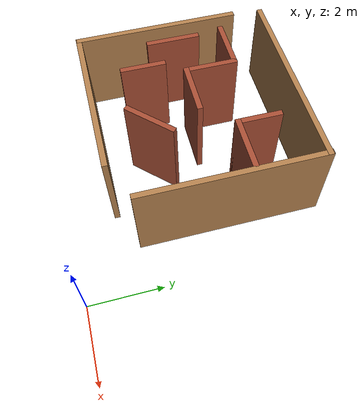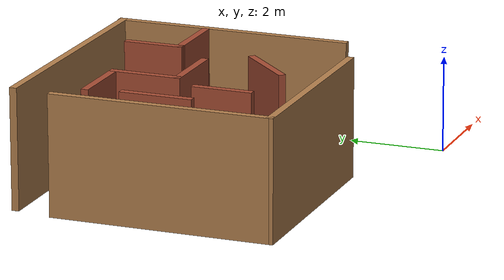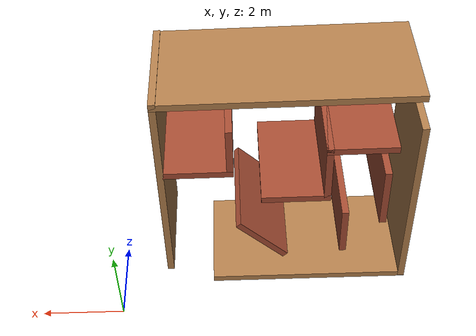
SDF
<?xml version='1.0'?>
<sdf version='1.7'>
  <model name='small_maze'>
    <pose>-3.41402 3.31294 0 0 -0 0</pose>
    <link name='Wall_12'>
      <collision name='Wall_12_Collision'>
        <geometry>
          <box>
            <size>4.61011 0.15 2.5</size>
          </box>
        </geometry>
        <pose>0 0 1.25 0 -0 0</pose>
      </collision>
      <visual name='Wall_12_Visual'>
        <pose>0 0 1.25 0 -0 0</pose>
        <geometry>
          <box>
            <size>4.61011 0.15 2.5</size>
          </box>
        </geometry>
        <material>
          <script>
            <uri>file://media/materials/scripts/gazebo.material</uri>
            <name>Gazebo/Wood</name>
          </script>
          <ambient>1 1 1 1</ambient>
        </material>
        <meta>
          <layer>0</layer>
        </meta>
      </visual>
      <pose>-3.32999 0.1334 0 0 -0 -1.56688</pose>
    </link>
    <link name='Wall_13'>
      <collision name='Wall_13_Collision'>
        <geometry>
          <box>
            <size>4.5 0.15 2.5</size>
          </box>
        </geometry>
        <pose>0 0 1.25 0 -0 0</pose>
      </collision>
      <visual name='Wall_13_Visual'>
        <pose>0 0 1.25 0 -0 0</pose>
        <geometry>
          <box>
            <size>4.5 0.15 2.5</size>
          </box>
        </geometry>
        <material>
          <script>
            <uri>file://media/materials/scripts/gazebo.material</uri>
            <name>Gazebo/Wood</name>
          </script>
          <ambient>1 1 1 1</ambient>
        </material>
        <meta>
          <layer>0</layer>
        </meta>
      </visual>
      <pose>-1.14624 -2.11413 0 0 -0 0</pose>
    </link>
    <link name='Wall_15'>
      <collision name='Wall_15_Collision'>
        <geometry>
          <box>
            <size>5 0.15 2.5</size>
          </box>
        </geometry>
        <pose>0 0 1.25 0 -0 0</pose>
      </collision>
      <visual name='Wall_15_Visual'>
        <pose>0 0 1.25 0 -0 0</pose>
        <geometry>
          <box>
            <size>5 0.15 2.5</size>
          </box>
        </geometry>
        <material>
          <script>
            <uri>file://media/materials/scripts/gazebo.material</uri>
            <name>Gazebo/Wood</name>
          </script>
          <ambient>1 1 1 1</ambient>
        </material>
        <meta>
          <layer>0</layer>
        </meta>
      </visual>
      <pose>2.09051 0.812943 0 0 -0 -1.5708</pose>
    </link>
    <link name='Wall_17'>
      <collision name='Wall_17_Collision'>
        <geometry>
          <box>
            <size>1.5 0.15 2.5</size>
          </box>
        </geometry>
        <pose>0 0 1.25 0 -0 0</pose>
      </collision>
      <visual name='Wall_17_Visual'>
        <pose>0 0 1.25 0 -0 0</pose>
        <geometry>
          <box>
            <size>1.5 0.15 2.5</size>
          </box>
        </geometry>
        <material>
          <script>
            <uri>file://media/materials/scripts/gazebo.material</uri>
            <name>Gazebo/Bricks</name>
          </script>
          <ambient>1 1 1 1</ambient>
        </material>
        <meta>
          <layer>0</layer>
        </meta>
      </visual>
      <pose>-2.13903 1.89121 0 0 -0 0</pose>
    </link>
    <link name='Wall_18'>
      <collision name='Wall_18_Collision'>
        <geometry>
          <box>
            <size>1.5 0.15 2.5</size>
          </box>
        </geometry>
        <pose>0 0 1.25 0 -0 0</pose>
      </collision>
      <visual name='Wall_18_Visual'>
        <pose>0 0 1.25 0 -0 0</pose>
        <geometry>
          <box>
            <size>1.5 0.15 2.5</size>
          </box>
        </geometry>
        <material>
          <script>
            <uri>file://media/materials/scripts/gazebo.material</uri>
            <name>Gazebo/Bricks</name>
          </script>
          <ambient>1 1 1 1</ambient>
        </material>
        <meta>
          <layer>0</layer>
        </meta>
      </visual>
      <pose>-1.46403 1.21621 0 0 -0 -1.5708</pose>
    </link>
    <link name='Wall_20'>
      <collision name='Wall_20_Collision'>
        <geometry>
          <box>
            <size>1.5 0.15 2.5</size>
          </box>
        </geometry>
        <pose>0 0 1.25 0 -0 0</pose>
      </collision>
      <visual name='Wall_20_Visual'>
        <pose>0 0 1.25 0 -0 0</pose>
        <geometry>
          <box>
            <size>1.5 0.15 2.5</size>
          </box>
        </geometry>
        <material>
          <script>
            <uri>file://media/materials/scripts/gazebo.material</uri>
            <name>Gazebo/Bricks</name>
          </script>
          <ambient>1 1 1 1</ambient>
        </material>
        <meta>
          <layer>0</layer>
        </meta>
      </visual>
      <pose>-0.789028 0.541208 0 0 -0 0</pose>
    </link>
    <link name='Wall_22'>
      <collision name='Wall_22_Collision'>
        <geometry>
          <box>
            <size>1.5 0.15 2.5</size>
          </box>
        </geometry>
        <pose>0 0 1.25 0 -0 0</pose>
      </collision>
      <visual name='Wall_22_Visual'>
        <pose>0 0 1.25 0 -0 0</pose>
        <geometry>
          <box>
            <size>1.5 0.15 2.5</size>
          </box>
        </geometry>
        <material>
          <script>
            <uri>file://media/materials/scripts/gazebo.material</uri>
            <name>Gazebo/Bricks</name>
          </script>
          <ambient>1 1 1 1</ambient>
        </material>
        <meta>
          <layer>0</layer>
        </meta>
      </visual>
      <pose>-2.72081 0.461931 0 0 -0 -1.5708</pose>
    </link>
    <link name='Wall_24'>
      <collision name='Wall_24_Collision'>
        <geometry>
          <box>
            <size>1.25 0.15 2.5</size>
          </box>
        </geometry>
        <pose>0 0 1.25 0 -0 0</pose>
      </collision>
      <visual name='Wall_24_Visual'>
        <pose>0 0 1.25 0 -0 0</pose>
        <geometry>
          <box>
            <size>1.25 0.15 2.5</size>
          </box>
        </geometry>
        <material>
          <script>
            <uri>file://media/materials/scripts/gazebo.material</uri>
            <name>Gazebo/Bricks</name>
          </script>
          <ambient>1 1 1 1</ambient>
        </material>
        <meta>
          <layer>0</layer>
        </meta>
      </visual>
      <pose>-1.8881 -0.569599 0 0 -0 -1.5708</pose>
    </link>
    <link name='Wall_26'>
      <collision name='Wall_26_Collision'>
        <geometry>
          <box>
            <size>1.5 0.15 2.5</size>
          </box>
        </geometry>
        <pose>0 0 1.25 0 -0 0</pose>
      </collision>
      <visual name='Wall_26_Visual'>
        <pose>0 0 1.25 0 -0 0</pose>
        <geometry>
          <box>
            <size>1.5 0.15 2.5</size>
          </box>
        </geometry>
        <material>
          <script>
            <uri>file://media/materials/scripts/gazebo.material</uri>
            <name>Gazebo/Bricks</name>
          </script>
          <ambient>1 1 1 1</ambient>
        </material>
        <meta>
          <layer>0</layer>
        </meta>
      </visual>
      <pose>-0.052341 -0.774463 0 0 -0 -2.35619</pose>
    </link>
    <link name='Wall_28'>
      <collision name='Wall_28_Collision'>
        <geometry>
          <box>
            <size>1.25 0.15 2.5</size>
          </box>
        </geometry>
        <pose>0 0 1.25 0 -0 0</pose>
      </collision>
      <visual name='Wall_28_Visual'>
        <pose>0 0 1.25 0 -0 0</pose>
        <geometry>
          <box>
            <size>1.25 0.15 2.5</size>
          </box>
        </geometry>
        <material>
          <script>
            <uri>file://media/materials/scripts/gazebo.material</uri>
            <name>Gazebo/Bricks</name>
          </script>
          <ambient>1 1 1 1</ambient>
        </material>
        <meta>
          <layer>0</layer>
        </meta>
      </visual>
      <pose>0.610001 1.90538 0 0 -0 -1.5708</pose>
    </link>
    <link name='Wall_29'>
      <collision name='Wall_29_Collision'>
        <geometry>
          <box>
            <size>1.5 0.15 2.5</size>
          </box>
        </geometry>
        <pose>0 0 1.25 0 -0 0</pose>
      </collision>
      <visual name='Wall_29_Visual'>
        <pose>0 0 1.25 0 -0 0</pose>
        <geometry>
          <box>
            <size>1.5 0.15 2.5</size>
          </box>
        </geometry>
        <material>
          <script>
            <uri>file://media/materials/scripts/gazebo.material</uri>
            <name>Gazebo/Bricks</name>
          </script>
          <ambient>1 1 1 1</ambient>
        </material>
        <meta>
          <layer>0</layer>
        </meta>
      </visual>
      <pose>1.285 1.35538 0 0 -0 0</pose>
    </link>
    <link name='Wall_9'>
      <collision name='Wall_9_Collision'>
        <geometry>
          <box>
            <size>5.45681 0.15 2.5</size>
          </box>
        </geometry>
        <pose>0 0 1.25 0 -0 0</pose>
      </collision>
      <visual name='Wall_9_Visual'>
        <pose>0 0 1.25 0 -0 0</pose>
        <geometry>
          <box>
            <size>5.45681 0.15 2.5</size>
          </box>
        </geometry>
        <material>
          <script>
            <uri>file://media/materials/scripts/gazebo.material</uri>
            <name>Gazebo/Wood</name>
          </script>
          <ambient>1 1 1 1</ambient>
        </material>
        <meta>
          <layer>0</layer>
        </meta>
      </visual>
      <pose>-0.562893 3.22045 0 0 -0 0</pose>
    </link>
    <static>1</static>
  </model>
</sdf>
